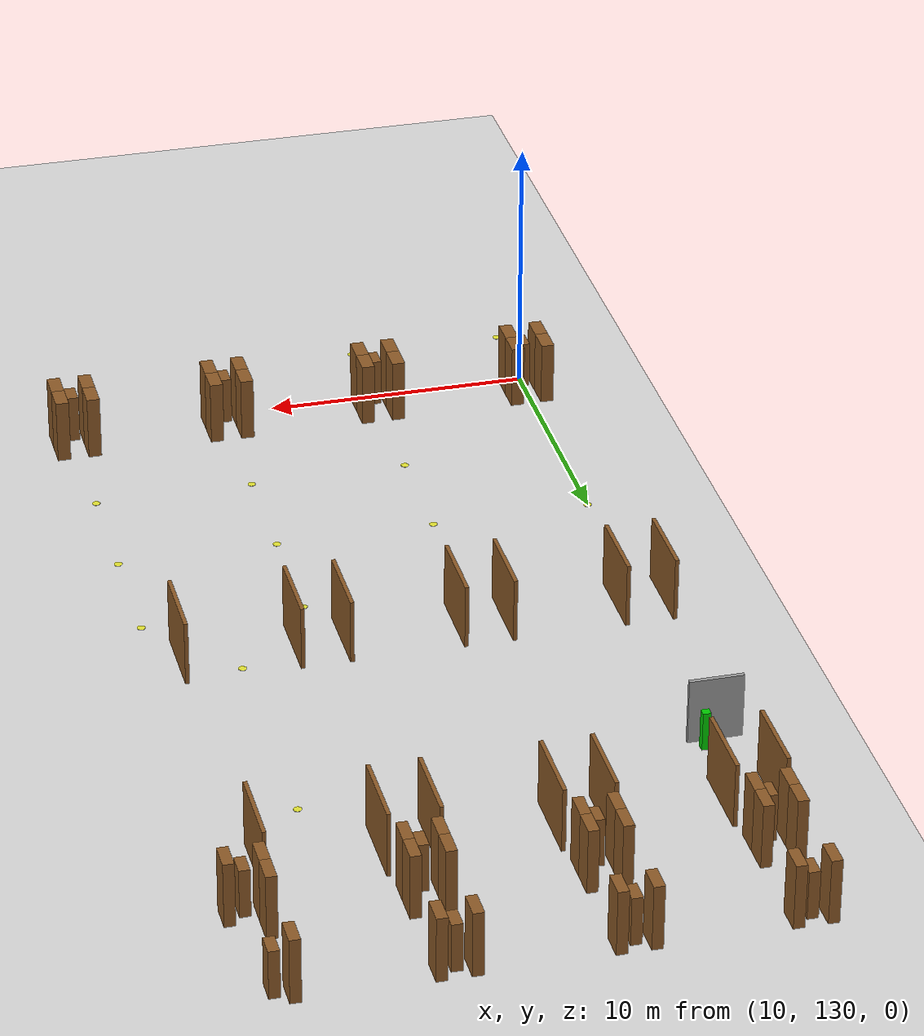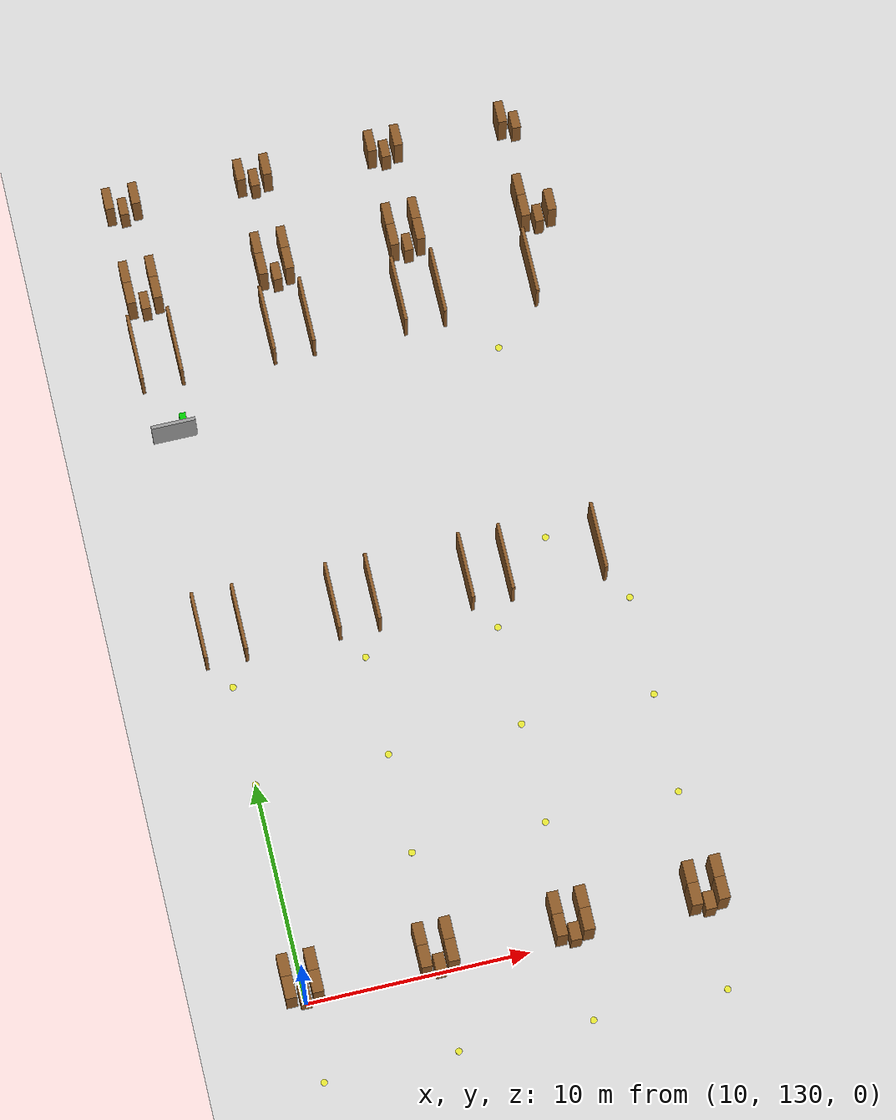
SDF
<sdf version="1.9">
 <world name="realistic_warehouse_150x200m">
  <model name="ground_plane">
   <static>true</static>
   <pose>68.5 102.0 0 0 0 0</pose>
   <link name="ground_link">
    <visual name="ground_visual">
     <geometry><box><size>127.0 194.0 0.01</size></box></geometry>
     <material><ambient>0.85 0.85 0.85 1.0</ambient><diffuse>0.85 0.85 0.85 1.0</diffuse></material>
    </visual>
    <collision name="ground_visual_collision">
     <geometry><box><size>127.0 194.0 0.01</size></box></geometry>
    </collision>
    <collision name="ground_collision">
     <geometry><plane><normal>0 0 1</normal><size>127.0 194.0</size></plane></geometry>
    </collision>
   </link>
  </model>
  <model name="dock_wall_Zone_A_C1_001">
   <static>true</static>
   <pose>10.0 156.2 1.25 0 0 0</pose>
   <link name="dock_wall_Zone_A_C1_001_link">
    <visual name="dock_wall_Zone_A_C1_001_vis">
     <geometry><box><size>2.0 0.15 2.5</size></box></geometry>
     <material><ambient>0.6 0.6 0.6 1.0</ambient><diffuse>0.6 0.6 0.6 1.0</diffuse></material>
    </visual>
    <collision name="dock_wall_Zone_A_C1_001_vis_collision">
     <geometry><box><size>2.0 0.15 2.5</size></box></geometry>
    </collision>
   </link>
  </model>
  <model name="charger_Zone_A_C1_002">
   <static>true</static>
   <pose>10.5 156.7 0.75 0 0 0</pose>
   <link name="charger_Zone_A_C1_002_link">
    <visual name="charger_Zone_A_C1_002_vis">
     <geometry><box><size>0.3 0.3 1.5</size></box></geometry>
     <material><ambient>0.0 0.8 0.0 1.0</ambient><diffuse>0.0 0.8 0.0 1.0</diffuse></material>
    </visual>
    <collision name="charger_Zone_A_C1_002_vis_collision">
     <geometry><box><size>0.3 0.3 1.5</size></box></geometry>
    </collision>
   </link>
  </model>
  <model name="cross_Zone_A_entry_005">
   <static>true</static>
   <pose>25.0 157.0 0.01 0 0 0</pose>
   <link name="cross_Zone_A_entry_005_link">
    <visual name="cross_Zone_A_entry_005_vis">
     <geometry><cylinder><radius>0.15</radius><length>0.02</length></cylinder></geometry>
     <material><ambient>0.9 0.9 0.2 1.0</ambient><diffuse>0.9 0.9 0.2 1.0</diffuse></material>
    </visual>
    <collision name="cross_Zone_A_entry_005_vis_collision">
     <geometry><cylinder><radius>0.15</radius><length>0.02</length></cylinder></geometry>
    </collision>
   </link>
  </model>
  <model name="aisle_L_Zone_A_A0_entry_006">
   <static>true</static>
   <pose>9.1 160.0 1.25 0 0 0</pose>
   <link name="aisle_L_Zone_A_A0_entry_006_link">
    <visual name="aisle_L_Zone_A_A0_entry_006_vis">
     <geometry><box><size>0.15 3.0 2.5</size></box></geometry>
     <material><ambient>0.55 0.35 0.15 1.0</ambient><diffuse>0.55 0.35 0.15 1.0</diffuse></material>
    </visual>
    <collision name="aisle_L_Zone_A_A0_entry_006_vis_collision">
     <geometry><box><size>0.15 3.0 2.5</size></box></geometry>
    </collision>
   </link>
  </model>
  <model name="aisle_R_Zone_A_A0_entry_007">
   <static>true</static>
   <pose>10.9 160.0 1.25 0 0 0</pose>
   <link name="aisle_R_Zone_A_A0_entry_007_link">
    <visual name="aisle_R_Zone_A_A0_entry_007_vis">
     <geometry><box><size>0.15 3.0 2.5</size></box></geometry>
     <material><ambient>0.55 0.35 0.15 1.0</ambient><diffuse>0.55 0.35 0.15 1.0</diffuse></material>
    </visual>
    <collision name="aisle_R_Zone_A_A0_entry_007_vis_collision">
     <geometry><box><size>0.15 3.0 2.5</size></box></geometry>
    </collision>
   </link>
  </model>
  <model name="rack_Zone_A_A0_S0_008">
   <static>true</static>
   <pose>9.4 162.5 1.25 0 0 0</pose>
   <link name="rack_Zone_A_A0_S0_008_link">
    <visual name="rack_Zone_A_A0_S0_008_vis">
     <geometry><box><size>0.4 1.0 2.5</size></box></geometry>
     <material><ambient>0.55 0.35 0.15 1.0</ambient><diffuse>0.55 0.35 0.15 1.0</diffuse></material>
    </visual>
    <collision name="rack_Zone_A_A0_S0_008_vis_collision">
     <geometry><box><size>0.4 1.0 2.5</size></box></geometry>
    </collision>
   </link>
  </model>
  <model name="rack_Zone_A_A0_S0_009">
   <static>true</static>
   <pose>9.4 163.5 1.25 0 0 0</pose>
   <link name="rack_Zone_A_A0_S0_009_link">
    <visual name="rack_Zone_A_A0_S0_009_vis">
     <geometry><box><size>0.4 1.0 2.5</size></box></geometry>
     <material><ambient>0.55 0.35 0.15 1.0</ambient><diffuse>0.55 0.35 0.15 1.0</diffuse></material>
    </visual>
    <collision name="rack_Zone_A_A0_S0_009_vis_collision">
     <geometry><box><size>0.4 1.0 2.5</size></box></geometry>
    </collision>
   </link>
  </model>
  <model name="rack_Zone_A_A0_S0_010">
   <static>true</static>
   <pose>10.6 162.5 1.25 0 0 0</pose>
   <link name="rack_Zone_A_A0_S0_010_link">
    <visual name="rack_Zone_A_A0_S0_010_vis">
     <geometry><box><size>0.4 1.0 2.5</size></box></geometry>
     <material><ambient>0.55 0.35 0.15 1.0</ambient><diffuse>0.55 0.35 0.15 1.0</diffuse></material>
    </visual>
    <collision name="rack_Zone_A_A0_S0_010_vis_collision">
     <geometry><box><size>0.4 1.0 2.5</size></box></geometry>
    </collision>
   </link>
  </model>
  <model name="rack_Zone_A_A0_S0_011">
   <static>true</static>
   <pose>10.6 163.5 1.25 0 0 0</pose>
   <link name="rack_Zone_A_A0_S0_011_link">
    <visual name="rack_Zone_A_A0_S0_011_vis">
     <geometry><box><size>0.4 1.0 2.5</size></box></geometry>
     <material><ambient>0.55 0.35 0.15 1.0</ambient><diffuse>0.55 0.35 0.15 1.0</diffuse></material>
    </visual>
    <collision name="rack_Zone_A_A0_S0_011_vis_collision">
     <geometry><box><size>0.4 1.0 2.5</size></box></geometry>
    </collision>
   </link>
  </model>
  <model name="rack_Zone_A_A0_S0_012">
   <static>true</static>
   <pose>10.0 162.2 0.9375 0 0 0</pose>
   <link name="rack_Zone_A_A0_S0_012_link">
    <visual name="rack_Zone_A_A0_S0_012_vis">
     <geometry><box><size>0.4 0.8 1.875</size></box></geometry>
     <material><ambient>0.55 0.35 0.15 1.0</ambient><diffuse>0.55 0.35 0.15 1.0</diffuse></material>
    </visual>
    <collision name="rack_Zone_A_A0_S0_012_vis_collision">
     <geometry><box><size>0.4 0.8 1.875</size></box></geometry>
    </collision>
   </link>
  </model>
  <model name="rack_Zone_A_A0_S1_013">
   <static>true</static>
   <pose>9.4 167.0 1.25 0 0 0</pose>
   <link name="rack_Zone_A_A0_S1_013_link">
    <visual name="rack_Zone_A_A0_S1_013_vis">
     <geometry><box><size>0.4 1.0 2.5</size></box></geometry>
     <material><ambient>0.55 0.35 0.15 1.0</ambient><diffuse>0.55 0.35 0.15 1.0</diffuse></material>
    </visual>
    <collision name="rack_Zone_A_A0_S1_013_vis_collision">
     <geometry><box><size>0.4 1.0 2.5</size></box></geometry>
    </collision>
   </link>
  </model>
  <model name="rack_Zone_A_A0_S1_015">
   <static>true</static>
   <pose>10.6 167.0 1.25 0 0 0</pose>
   <link name="rack_Zone_A_A0_S1_015_link">
    <visual name="rack_Zone_A_A0_S1_015_vis">
     <geometry><box><size>0.4 1.0 2.5</size></box></geometry>
     <material><ambient>0.55 0.35 0.15 1.0</ambient><diffuse>0.55 0.35 0.15 1.0</diffuse></material>
    </visual>
    <collision name="rack_Zone_A_A0_S1_015_vis_collision">
     <geometry><box><size>0.4 1.0 2.5</size></box></geometry>
    </collision>
   </link>
  </model>
  <model name="rack_Zone_A_A0_S1_017">
   <static>true</static>
   <pose>10.0 166.7 0.9375 0 0 0</pose>
   <link name="rack_Zone_A_A0_S1_017_link">
    <visual name="rack_Zone_A_A0_S1_017_vis">
     <geometry><box><size>0.4 0.8 1.875</size></box></geometry>
     <material><ambient>0.55 0.35 0.15 1.0</ambient><diffuse>0.55 0.35 0.15 1.0</diffuse></material>
    </visual>
    <collision name="rack_Zone_A_A0_S1_017_vis_collision">
     <geometry><box><size>0.4 0.8 1.875</size></box></geometry>
    </collision>
   </link>
  </model>
  <model name="aisle_L_Zone_A_A1_entry_050">
   <static>true</static>
   <pose>15.1 160.0 1.25 0 0 0</pose>
   <link name="aisle_L_Zone_A_A1_entry_050_link">
    <visual name="aisle_L_Zone_A_A1_entry_050_vis">
     <geometry><box><size>0.15 3.0 2.5</size></box></geometry>
     <material><ambient>0.55 0.35 0.15 1.0</ambient><diffuse>0.55 0.35 0.15 1.0</diffuse></material>
    </visual>
    <collision name="aisle_L_Zone_A_A1_entry_050_vis_collision">
     <geometry><box><size>0.15 3.0 2.5</size></box></geometry>
    </collision>
   </link>
  </model>
  <model name="aisle_R_Zone_A_A1_entry_051">
   <static>true</static>
   <pose>16.9 160.0 1.25 0 0 0</pose>
   <link name="aisle_R_Zone_A_A1_entry_051_link">
    <visual name="aisle_R_Zone_A_A1_entry_051_vis">
     <geometry><box><size>0.15 3.0 2.5</size></box></geometry>
     <material><ambient>0.55 0.35 0.15 1.0</ambient><diffuse>0.55 0.35 0.15 1.0</diffuse></material>
    </visual>
    <collision name="aisle_R_Zone_A_A1_entry_051_vis_collision">
     <geometry><box><size>0.15 3.0 2.5</size></box></geometry>
    </collision>
   </link>
  </model>
  <model name="rack_Zone_A_A1_S0_052">
   <static>true</static>
   <pose>15.4 162.5 1.25 0 0 0</pose>
   <link name="rack_Zone_A_A1_S0_052_link">
    <visual name="rack_Zone_A_A1_S0_052_vis">
     <geometry><box><size>0.4 1.0 2.5</size></box></geometry>
     <material><ambient>0.55 0.35 0.15 1.0</ambient><diffuse>0.55 0.35 0.15 1.0</diffuse></material>
    </visual>
    <collision name="rack_Zone_A_A1_S0_052_vis_collision">
     <geometry><box><size>0.4 1.0 2.5</size></box></geometry>
    </collision>
   </link>
  </model>
  <model name="rack_Zone_A_A1_S0_053">
   <static>true</static>
   <pose>15.4 163.5 1.25 0 0 0</pose>
   <link name="rack_Zone_A_A1_S0_053_link">
    <visual name="rack_Zone_A_A1_S0_053_vis">
     <geometry><box><size>0.4 1.0 2.5</size></box></geometry>
     <material><ambient>0.55 0.35 0.15 1.0</ambient><diffuse>0.55 0.35 0.15 1.0</diffuse></material>
    </visual>
    <collision name="rack_Zone_A_A1_S0_053_vis_collision">
     <geometry><box><size>0.4 1.0 2.5</size></box></geometry>
    </collision>
   </link>
  </model>
  <model name="rack_Zone_A_A1_S0_054">
   <static>true</static>
   <pose>16.6 162.5 1.25 0 0 0</pose>
   <link name="rack_Zone_A_A1_S0_054_link">
    <visual name="rack_Zone_A_A1_S0_054_vis">
     <geometry><box><size>0.4 1.0 2.5</size></box></geometry>
     <material><ambient>0.55 0.35 0.15 1.0</ambient><diffuse>0.55 0.35 0.15 1.0</diffuse></material>
    </visual>
    <collision name="rack_Zone_A_A1_S0_054_vis_collision">
     <geometry><box><size>0.4 1.0 2.5</size></box></geometry>
    </collision>
   </link>
  </model>
  <model name="rack_Zone_A_A1_S0_055">
   <static>true</static>
   <pose>16.6 163.5 1.25 0 0 0</pose>
   <link name="rack_Zone_A_A1_S0_055_link">
    <visual name="rack_Zone_A_A1_S0_055_vis">
     <geometry><box><size>0.4 1.0 2.5</size></box></geometry>
     <material><ambient>0.55 0.35 0.15 1.0</ambient><diffuse>0.55 0.35 0.15 1.0</diffuse></material>
    </visual>
    <collision name="rack_Zone_A_A1_S0_055_vis_collision">
     <geometry><box><size>0.4 1.0 2.5</size></box></geometry>
    </collision>
   </link>
  </model>
  <model name="rack_Zone_A_A1_S0_056">
   <static>true</static>
   <pose>16.0 162.2 0.9375 0 0 0</pose>
   <link name="rack_Zone_A_A1_S0_056_link">
    <visual name="rack_Zone_A_A1_S0_056_vis">
     <geometry><box><size>0.4 0.8 1.875</size></box></geometry>
     <material><ambient>0.55 0.35 0.15 1.0</ambient><diffuse>0.55 0.35 0.15 1.0</diffuse></material>
    </visual>
    <collision name="rack_Zone_A_A1_S0_056_vis_collision">
     <geometry><box><size>0.4 0.8 1.875</size></box></geometry>
    </collision>
   </link>
  </model>
  <model name="rack_Zone_A_A1_S1_057">
   <static>true</static>
   <pose>15.4 167.0 1.25 0 0 0</pose>
   <link name="rack_Zone_A_A1_S1_057_link">
    <visual name="rack_Zone_A_A1_S1_057_vis">
     <geometry><box><size>0.4 1.0 2.5</size></box></geometry>
     <material><ambient>0.55 0.35 0.15 1.0</ambient><diffuse>0.55 0.35 0.15 1.0</diffuse></material>
    </visual>
    <collision name="rack_Zone_A_A1_S1_057_vis_collision">
     <geometry><box><size>0.4 1.0 2.5</size></box></geometry>
    </collision>
   </link>
  </model>
  <model name="rack_Zone_A_A1_S1_059">
   <static>true</static>
   <pose>16.6 167.0 1.25 0 0 0</pose>
   <link name="rack_Zone_A_A1_S1_059_link">
    <visual name="rack_Zone_A_A1_S1_059_vis">
     <geometry><box><size>0.4 1.0 2.5</size></box></geometry>
     <material><ambient>0.55 0.35 0.15 1.0</ambient><diffuse>0.55 0.35 0.15 1.0</diffuse></material>
    </visual>
    <collision name="rack_Zone_A_A1_S1_059_vis_collision">
     <geometry><box><size>0.4 1.0 2.5</size></box></geometry>
    </collision>
   </link>
  </model>
  <model name="rack_Zone_A_A1_S1_061">
   <static>true</static>
   <pose>16.0 166.7 0.9375 0 0 0</pose>
   <link name="rack_Zone_A_A1_S1_061_link">
    <visual name="rack_Zone_A_A1_S1_061_vis">
     <geometry><box><size>0.4 0.8 1.875</size></box></geometry>
     <material><ambient>0.55 0.35 0.15 1.0</ambient><diffuse>0.55 0.35 0.15 1.0</diffuse></material>
    </visual>
    <collision name="rack_Zone_A_A1_S1_061_vis_collision">
     <geometry><box><size>0.4 0.8 1.875</size></box></geometry>
    </collision>
   </link>
  </model>
  <model name="aisle_L_Zone_A_A2_entry_094">
   <static>true</static>
   <pose>21.1 160.0 1.25 0 0 0</pose>
   <link name="aisle_L_Zone_A_A2_entry_094_link">
    <visual name="aisle_L_Zone_A_A2_entry_094_vis">
     <geometry><box><size>0.15 3.0 2.5</size></box></geometry>
     <material><ambient>0.55 0.35 0.15 1.0</ambient><diffuse>0.55 0.35 0.15 1.0</diffuse></material>
    </visual>
    <collision name="aisle_L_Zone_A_A2_entry_094_vis_collision">
     <geometry><box><size>0.15 3.0 2.5</size></box></geometry>
    </collision>
   </link>
  </model>
  <model name="aisle_R_Zone_A_A2_entry_095">
   <static>true</static>
   <pose>22.9 160.0 1.25 0 0 0</pose>
   <link name="aisle_R_Zone_A_A2_entry_095_link">
    <visual name="aisle_R_Zone_A_A2_entry_095_vis">
     <geometry><box><size>0.15 3.0 2.5</size></box></geometry>
     <material><ambient>0.55 0.35 0.15 1.0</ambient><diffuse>0.55 0.35 0.15 1.0</diffuse></material>
    </visual>
    <collision name="aisle_R_Zone_A_A2_entry_095_vis_collision">
     <geometry><box><size>0.15 3.0 2.5</size></box></geometry>
    </collision>
   </link>
  </model>
  <model name="rack_Zone_A_A2_S0_096">
   <static>true</static>
   <pose>21.4 162.5 1.25 0 0 0</pose>
   <link name="rack_Zone_A_A2_S0_096_link">
    <visual name="rack_Zone_A_A2_S0_096_vis">
     <geometry><box><size>0.4 1.0 2.5</size></box></geometry>
     <material><ambient>0.55 0.35 0.15 1.0</ambient><diffuse>0.55 0.35 0.15 1.0</diffuse></material>
    </visual>
    <collision name="rack_Zone_A_A2_S0_096_vis_collision">
     <geometry><box><size>0.4 1.0 2.5</size></box></geometry>
    </collision>
   </link>
  </model>
  <model name="rack_Zone_A_A2_S0_097">
   <static>true</static>
   <pose>21.4 163.5 1.25 0 0 0</pose>
   <link name="rack_Zone_A_A2_S0_097_link">
    <visual name="rack_Zone_A_A2_S0_097_vis">
     <geometry><box><size>0.4 1.0 2.5</size></box></geometry>
     <material><ambient>0.55 0.35 0.15 1.0</ambient><diffuse>0.55 0.35 0.15 1.0</diffuse></material>
    </visual>
    <collision name="rack_Zone_A_A2_S0_097_vis_collision">
     <geometry><box><size>0.4 1.0 2.5</size></box></geometry>
    </collision>
   </link>
  </model>
  <model name="rack_Zone_A_A2_S0_098">
   <static>true</static>
   <pose>22.6 162.5 1.25 0 0 0</pose>
   <link name="rack_Zone_A_A2_S0_098_link">
    <visual name="rack_Zone_A_A2_S0_098_vis">
     <geometry><box><size>0.4 1.0 2.5</size></box></geometry>
     <material><ambient>0.55 0.35 0.15 1.0</ambient><diffuse>0.55 0.35 0.15 1.0</diffuse></material>
    </visual>
    <collision name="rack_Zone_A_A2_S0_098_vis_collision">
     <geometry><box><size>0.4 1.0 2.5</size></box></geometry>
    </collision>
   </link>
  </model>
  <model name="rack_Zone_A_A2_S0_099">
   <static>true</static>
   <pose>22.6 163.5 1.25 0 0 0</pose>
   <link name="rack_Zone_A_A2_S0_099_link">
    <visual name="rack_Zone_A_A2_S0_099_vis">
     <geometry><box><size>0.4 1.0 2.5</size></box></geometry>
     <material><ambient>0.55 0.35 0.15 1.0</ambient><diffuse>0.55 0.35 0.15 1.0</diffuse></material>
    </visual>
    <collision name="rack_Zone_A_A2_S0_099_vis_collision">
     <geometry><box><size>0.4 1.0 2.5</size></box></geometry>
    </collision>
   </link>
  </model>
  <model name="rack_Zone_A_A2_S0_100">
   <static>true</static>
   <pose>22.0 162.2 0.9375 0 0 0</pose>
   <link name="rack_Zone_A_A2_S0_100_link">
    <visual name="rack_Zone_A_A2_S0_100_vis">
     <geometry><box><size>0.4 0.8 1.875</size></box></geometry>
     <material><ambient>0.55 0.35 0.15 1.0</ambient><diffuse>0.55 0.35 0.15 1.0</diffuse></material>
    </visual>
    <collision name="rack_Zone_A_A2_S0_100_vis_collision">
     <geometry><box><size>0.4 0.8 1.875</size></box></geometry>
    </collision>
   </link>
  </model>
  <model name="rack_Zone_A_A2_S1_101">
   <static>true</static>
   <pose>21.4 167.0 1.25 0 0 0</pose>
   <link name="rack_Zone_A_A2_S1_101_link">
    <visual name="rack_Zone_A_A2_S1_101_vis">
     <geometry><box><size>0.4 1.0 2.5</size></box></geometry>
     <material><ambient>0.55 0.35 0.15 1.0</ambient><diffuse>0.55 0.35 0.15 1.0</diffuse></material>
    </visual>
    <collision name="rack_Zone_A_A2_S1_101_vis_collision">
     <geometry><box><size>0.4 1.0 2.5</size></box></geometry>
    </collision>
   </link>
  </model>
  <model name="rack_Zone_A_A2_S1_103">
   <static>true</static>
   <pose>22.6 167.0 1.25 0 0 0</pose>
   <link name="rack_Zone_A_A2_S1_103_link">
    <visual name="rack_Zone_A_A2_S1_103_vis">
     <geometry><box><size>0.4 1.0 2.5</size></box></geometry>
     <material><ambient>0.55 0.35 0.15 1.0</ambient><diffuse>0.55 0.35 0.15 1.0</diffuse></material>
    </visual>
    <collision name="rack_Zone_A_A2_S1_103_vis_collision">
     <geometry><box><size>0.4 1.0 2.5</size></box></geometry>
    </collision>
   </link>
  </model>
  <model name="rack_Zone_A_A2_S1_105">
   <static>true</static>
   <pose>22.0 166.7 0.9375 0 0 0</pose>
   <link name="rack_Zone_A_A2_S1_105_link">
    <visual name="rack_Zone_A_A2_S1_105_vis">
     <geometry><box><size>0.4 0.8 1.875</size></box></geometry>
     <material><ambient>0.55 0.35 0.15 1.0</ambient><diffuse>0.55 0.35 0.15 1.0</diffuse></material>
    </visual>
    <collision name="rack_Zone_A_A2_S1_105_vis_collision">
     <geometry><box><size>0.4 0.8 1.875</size></box></geometry>
    </collision>
   </link>
  </model>
  <model name="aisle_L_Zone_A_A3_entry_138">
   <static>true</static>
   <pose>27.1 160.0 1.25 0 0 0</pose>
   <link name="aisle_L_Zone_A_A3_entry_138_link">
    <visual name="aisle_L_Zone_A_A3_entry_138_vis">
     <geometry><box><size>0.15 3.0 2.5</size></box></geometry>
     <material><ambient>0.55 0.35 0.15 1.0</ambient><diffuse>0.55 0.35 0.15 1.0</diffuse></material>
    </visual>
    <collision name="aisle_L_Zone_A_A3_entry_138_vis_collision">
     <geometry><box><size>0.15 3.0 2.5</size></box></geometry>
    </collision>
   </link>
  </model>
  <model name="rack_Zone_A_A3_S0_140">
   <static>true</static>
   <pose>27.4 162.5 1.25 0 0 0</pose>
   <link name="rack_Zone_A_A3_S0_140_link">
    <visual name="rack_Zone_A_A3_S0_140_vis">
     <geometry><box><size>0.4 1.0 2.5</size></box></geometry>
     <material><ambient>0.55 0.35 0.15 1.0</ambient><diffuse>0.55 0.35 0.15 1.0</diffuse></material>
    </visual>
    <collision name="rack_Zone_A_A3_S0_140_vis_collision">
     <geometry><box><size>0.4 1.0 2.5</size></box></geometry>
    </collision>
   </link>
  </model>
  <model name="rack_Zone_A_A3_S0_141">
   <static>true</static>
   <pose>27.4 163.5 1.25 0 0 0</pose>
   <link name="rack_Zone_A_A3_S0_141_link">
    <visual name="rack_Zone_A_A3_S0_141_vis">
     <geometry><box><size>0.4 1.0 2.5</size></box></geometry>
     <material><ambient>0.55 0.35 0.15 1.0</ambient><diffuse>0.55 0.35 0.15 1.0</diffuse></material>
    </visual>
    <collision name="rack_Zone_A_A3_S0_141_vis_collision">
     <geometry><box><size>0.4 1.0 2.5</size></box></geometry>
    </collision>
   </link>
  </model>
  <model name="rack_Zone_A_A3_S0_142">
   <static>true</static>
   <pose>28.6 162.5 1.25 0 0 0</pose>
   <link name="rack_Zone_A_A3_S0_142_link">
    <visual name="rack_Zone_A_A3_S0_142_vis">
     <geometry><box><size>0.4 1.0 2.5</size></box></geometry>
     <material><ambient>0.55 0.35 0.15 1.0</ambient><diffuse>0.55 0.35 0.15 1.0</diffuse></material>
    </visual>
    <collision name="rack_Zone_A_A3_S0_142_vis_collision">
     <geometry><box><size>0.4 1.0 2.5</size></box></geometry>
    </collision>
   </link>
  </model>
  <model name="rack_Zone_A_A3_S0_144">
   <static>true</static>
   <pose>28.0 162.2 0.9375 0 0 0</pose>
   <link name="rack_Zone_A_A3_S0_144_link">
    <visual name="rack_Zone_A_A3_S0_144_vis">
     <geometry><box><size>0.4 0.8 1.875</size></box></geometry>
     <material><ambient>0.55 0.35 0.15 1.0</ambient><diffuse>0.55 0.35 0.15 1.0</diffuse></material>
    </visual>
    <collision name="rack_Zone_A_A3_S0_144_vis_collision">
     <geometry><box><size>0.4 0.8 1.875</size></box></geometry>
    </collision>
   </link>
  </model>
  <model name="rack_Zone_A_A3_S1_145">
   <static>true</static>
   <pose>27.4 167.0 1.25 0 0 0</pose>
   <link name="rack_Zone_A_A3_S1_145_link">
    <visual name="rack_Zone_A_A3_S1_145_vis">
     <geometry><box><size>0.4 1.0 2.5</size></box></geometry>
     <material><ambient>0.55 0.35 0.15 1.0</ambient><diffuse>0.55 0.35 0.15 1.0</diffuse></material>
    </visual>
    <collision name="rack_Zone_A_A3_S1_145_vis_collision">
     <geometry><box><size>0.4 1.0 2.5</size></box></geometry>
    </collision>
   </link>
  </model>
  <model name="rack_Zone_A_A3_S1_149">
   <static>true</static>
   <pose>28.0 166.7 0.9375 0 0 0</pose>
   <link name="rack_Zone_A_A3_S1_149_link">
    <visual name="rack_Zone_A_A3_S1_149_vis">
     <geometry><box><size>0.4 0.8 1.875</size></box></geometry>
     <material><ambient>0.55 0.35 0.15 1.0</ambient><diffuse>0.55 0.35 0.15 1.0</diffuse></material>
    </visual>
    <collision name="rack_Zone_A_A3_S1_149_vis_collision">
     <geometry><box><size>0.4 0.8 1.875</size></box></geometry>
    </collision>
   </link>
  </model>
  <model name="cross_Zone_D_A0_S3_690">
   <static>true</static>
   <pose>10.0 126.5 0.01 0 0 0</pose>
   <link name="cross_Zone_D_A0_S3_690_link">
    <visual name="cross_Zone_D_A0_S3_690_vis">
     <geometry><cylinder><radius>0.15</radius><length>0.02</length></cylinder></geometry>
     <material><ambient>0.9 0.9 0.2 1.0</ambient><diffuse>0.9 0.9 0.2 1.0</diffuse></material>
    </visual>
    <collision name="cross_Zone_D_A0_S3_690_vis_collision">
     <geometry><cylinder><radius>0.15</radius><length>0.02</length></cylinder></geometry>
    </collision>
   </link>
  </model>
  <model name="rack_Zone_D_A0_S4_691">
   <static>true</static>
   <pose>9.4 130.5 1.25 0 0 0</pose>
   <link name="rack_Zone_D_A0_S4_691_link">
    <visual name="rack_Zone_D_A0_S4_691_vis">
     <geometry><box><size>0.5 1.0 2.5</size></box></geometry>
     <material><ambient>0.55 0.35 0.15 1.0</ambient><diffuse>0.55 0.35 0.15 1.0</diffuse></material>
    </visual>
    <collision name="rack_Zone_D_A0_S4_691_vis_collision">
     <geometry><box><size>0.5 1.0 2.5</size></box></geometry>
    </collision>
   </link>
  </model>
  <model name="rack_Zone_D_A0_S4_692">
   <static>true</static>
   <pose>9.4 131.5 1.25 0 0 0</pose>
   <link name="rack_Zone_D_A0_S4_692_link">
    <visual name="rack_Zone_D_A0_S4_692_vis">
     <geometry><box><size>0.5 1.0 2.5</size></box></geometry>
     <material><ambient>0.55 0.35 0.15 1.0</ambient><diffuse>0.55 0.35 0.15 1.0</diffuse></material>
    </visual>
    <collision name="rack_Zone_D_A0_S4_692_vis_collision">
     <geometry><box><size>0.5 1.0 2.5</size></box></geometry>
    </collision>
   </link>
  </model>
  <model name="rack_Zone_D_A0_S4_693">
   <static>true</static>
   <pose>10.6 130.5 1.25 0 0 0</pose>
   <link name="rack_Zone_D_A0_S4_693_link">
    <visual name="rack_Zone_D_A0_S4_693_vis">
     <geometry><box><size>0.5 1.0 2.5</size></box></geometry>
     <material><ambient>0.55 0.35 0.15 1.0</ambient><diffuse>0.55 0.35 0.15 1.0</diffuse></material>
    </visual>
    <collision name="rack_Zone_D_A0_S4_693_vis_collision">
     <geometry><box><size>0.5 1.0 2.5</size></box></geometry>
    </collision>
   </link>
  </model>
  <model name="rack_Zone_D_A0_S4_694">
   <static>true</static>
   <pose>10.6 131.5 1.25 0 0 0</pose>
   <link name="rack_Zone_D_A0_S4_694_link">
    <visual name="rack_Zone_D_A0_S4_694_vis">
     <geometry><box><size>0.5 1.0 2.5</size></box></geometry>
     <material><ambient>0.55 0.35 0.15 1.0</ambient><diffuse>0.55 0.35 0.15 1.0</diffuse></material>
    </visual>
    <collision name="rack_Zone_D_A0_S4_694_vis_collision">
     <geometry><box><size>0.5 1.0 2.5</size></box></geometry>
    </collision>
   </link>
  </model>
  <model name="rack_Zone_D_A0_S4_695">
   <static>true</static>
   <pose>10.0 130.2 0.9375 0 0 0</pose>
   <link name="rack_Zone_D_A0_S4_695_link">
    <visual name="rack_Zone_D_A0_S4_695_vis">
     <geometry><box><size>0.5 0.8 1.875</size></box></geometry>
     <material><ambient>0.55 0.35 0.15 1.0</ambient><diffuse>0.55 0.35 0.15 1.0</diffuse></material>
    </visual>
    <collision name="rack_Zone_D_A0_S4_695_vis_collision">
     <geometry><box><size>0.5 0.8 1.875</size></box></geometry>
    </collision>
   </link>
  </model>
  <model name="cross_Zone_D_A0_S5_696">
   <static>true</static>
   <pose>10.0 135.5 0.01 0 0 0</pose>
   <link name="cross_Zone_D_A0_S5_696_link">
    <visual name="cross_Zone_D_A0_S5_696_vis">
     <geometry><cylinder><radius>0.15</radius><length>0.02</length></cylinder></geometry>
     <material><ambient>0.9 0.9 0.2 1.0</ambient><diffuse>0.9 0.9 0.2 1.0</diffuse></material>
    </visual>
    <collision name="cross_Zone_D_A0_S5_696_vis_collision">
     <geometry><cylinder><radius>0.15</radius><length>0.02</length></cylinder></geometry>
    </collision>
   </link>
  </model>
  <model name="gap_Zone_D_A0_S6_697">
   <static>true</static>
   <pose>10.0 140.0 0.01 0 0 0</pose>
   <link name="gap_Zone_D_A0_S6_697_link">
    <visual name="gap_Zone_D_A0_S6_697_vis">
     <geometry><cylinder><radius>0.15</radius><length>0.02</length></cylinder></geometry>
     <material><ambient>0.9 0.9 0.2 1.0</ambient><diffuse>0.9 0.9 0.2 1.0</diffuse></material>
    </visual>
    <collision name="gap_Zone_D_A0_S6_697_vis_collision">
     <geometry><cylinder><radius>0.15</radius><length>0.02</length></cylinder></geometry>
    </collision>
   </link>
  </model>
  <model name="cross_Zone_D_A0_S7_698">
   <static>true</static>
   <pose>10.0 144.5 0.01 0 0 0</pose>
   <link name="cross_Zone_D_A0_S7_698_link">
    <visual name="cross_Zone_D_A0_S7_698_vis">
     <geometry><cylinder><radius>0.15</radius><length>0.02</length></cylinder></geometry>
     <material><ambient>0.9 0.9 0.2 1.0</ambient><diffuse>0.9 0.9 0.2 1.0</diffuse></material>
    </visual>
    <collision name="cross_Zone_D_A0_S7_698_vis_collision">
     <geometry><cylinder><radius>0.15</radius><length>0.02</length></cylinder></geometry>
    </collision>
   </link>
  </model>
  <model name="aisle_L_Zone_D_A0_exit_699">
   <static>true</static>
   <pose>9.1 147.0 1.25 0 0 0</pose>
   <link name="aisle_L_Zone_D_A0_exit_699_link">
    <visual name="aisle_L_Zone_D_A0_exit_699_vis">
     <geometry><box><size>0.15 3.0 2.5</size></box></geometry>
     <material><ambient>0.55 0.35 0.15 1.0</ambient><diffuse>0.55 0.35 0.15 1.0</diffuse></material>
    </visual>
    <collision name="aisle_L_Zone_D_A0_exit_699_vis_collision">
     <geometry><box><size>0.15 3.0 2.5</size></box></geometry>
    </collision>
   </link>
  </model>
  <model name="aisle_R_Zone_D_A0_exit_700">
   <static>true</static>
   <pose>10.9 147.0 1.25 0 0 0</pose>
   <link name="aisle_R_Zone_D_A0_exit_700_link">
    <visual name="aisle_R_Zone_D_A0_exit_700_vis">
     <geometry><box><size>0.15 3.0 2.5</size></box></geometry>
     <material><ambient>0.55 0.35 0.15 1.0</ambient><diffuse>0.55 0.35 0.15 1.0</diffuse></material>
    </visual>
    <collision name="aisle_R_Zone_D_A0_exit_700_vis_collision">
     <geometry><box><size>0.15 3.0 2.5</size></box></geometry>
    </collision>
   </link>
  </model>
  <model name="cross_Zone_D_A1_S3_710">
   <static>true</static>
   <pose>16.0 126.5 0.01 0 0 0</pose>
   <link name="cross_Zone_D_A1_S3_710_link">
    <visual name="cross_Zone_D_A1_S3_710_vis">
     <geometry><cylinder><radius>0.15</radius><length>0.02</length></cylinder></geometry>
     <material><ambient>0.9 0.9 0.2 1.0</ambient><diffuse>0.9 0.9 0.2 1.0</diffuse></material>
    </visual>
    <collision name="cross_Zone_D_A1_S3_710_vis_collision">
     <geometry><cylinder><radius>0.15</radius><length>0.02</length></cylinder></geometry>
    </collision>
   </link>
  </model>
  <model name="rack_Zone_D_A1_S4_711">
   <static>true</static>
   <pose>15.4 130.5 1.25 0 0 0</pose>
   <link name="rack_Zone_D_A1_S4_711_link">
    <visual name="rack_Zone_D_A1_S4_711_vis">
     <geometry><box><size>0.5 1.0 2.5</size></box></geometry>
     <material><ambient>0.55 0.35 0.15 1.0</ambient><diffuse>0.55 0.35 0.15 1.0</diffuse></material>
    </visual>
    <collision name="rack_Zone_D_A1_S4_711_vis_collision">
     <geometry><box><size>0.5 1.0 2.5</size></box></geometry>
    </collision>
   </link>
  </model>
  <model name="rack_Zone_D_A1_S4_712">
   <static>true</static>
   <pose>15.4 131.5 1.25 0 0 0</pose>
   <link name="rack_Zone_D_A1_S4_712_link">
    <visual name="rack_Zone_D_A1_S4_712_vis">
     <geometry><box><size>0.5 1.0 2.5</size></box></geometry>
     <material><ambient>0.55 0.35 0.15 1.0</ambient><diffuse>0.55 0.35 0.15 1.0</diffuse></material>
    </visual>
    <collision name="rack_Zone_D_A1_S4_712_vis_collision">
     <geometry><box><size>0.5 1.0 2.5</size></box></geometry>
    </collision>
   </link>
  </model>
  <model name="rack_Zone_D_A1_S4_713">
   <static>true</static>
   <pose>16.6 130.5 1.25 0 0 0</pose>
   <link name="rack_Zone_D_A1_S4_713_link">
    <visual name="rack_Zone_D_A1_S4_713_vis">
     <geometry><box><size>0.5 1.0 2.5</size></box></geometry>
     <material><ambient>0.55 0.35 0.15 1.0</ambient><diffuse>0.55 0.35 0.15 1.0</diffuse></material>
    </visual>
    <collision name="rack_Zone_D_A1_S4_713_vis_collision">
     <geometry><box><size>0.5 1.0 2.5</size></box></geometry>
    </collision>
   </link>
  </model>
  <model name="rack_Zone_D_A1_S4_714">
   <static>true</static>
   <pose>16.6 131.5 1.25 0 0 0</pose>
   <link name="rack_Zone_D_A1_S4_714_link">
    <visual name="rack_Zone_D_A1_S4_714_vis">
     <geometry><box><size>0.5 1.0 2.5</size></box></geometry>
     <material><ambient>0.55 0.35 0.15 1.0</ambient><diffuse>0.55 0.35 0.15 1.0</diffuse></material>
    </visual>
    <collision name="rack_Zone_D_A1_S4_714_vis_collision">
     <geometry><box><size>0.5 1.0 2.5</size></box></geometry>
    </collision>
   </link>
  </model>
  <model name="rack_Zone_D_A1_S4_715">
   <static>true</static>
   <pose>16.0 130.2 0.9375 0 0 0</pose>
   <link name="rack_Zone_D_A1_S4_715_link">
    <visual name="rack_Zone_D_A1_S4_715_vis">
     <geometry><box><size>0.5 0.8 1.875</size></box></geometry>
     <material><ambient>0.55 0.35 0.15 1.0</ambient><diffuse>0.55 0.35 0.15 1.0</diffuse></material>
    </visual>
    <collision name="rack_Zone_D_A1_S4_715_vis_collision">
     <geometry><box><size>0.5 0.8 1.875</size></box></geometry>
    </collision>
   </link>
  </model>
  <model name="cross_Zone_D_A1_S5_716">
   <static>true</static>
   <pose>16.0 135.5 0.01 0 0 0</pose>
   <link name="cross_Zone_D_A1_S5_716_link">
    <visual name="cross_Zone_D_A1_S5_716_vis">
     <geometry><cylinder><radius>0.15</radius><length>0.02</length></cylinder></geometry>
     <material><ambient>0.9 0.9 0.2 1.0</ambient><diffuse>0.9 0.9 0.2 1.0</diffuse></material>
    </visual>
    <collision name="cross_Zone_D_A1_S5_716_vis_collision">
     <geometry><cylinder><radius>0.15</radius><length>0.02</length></cylinder></geometry>
    </collision>
   </link>
  </model>
  <model name="gap_Zone_D_A1_S6_717">
   <static>true</static>
   <pose>16.0 140.0 0.01 0 0 0</pose>
   <link name="gap_Zone_D_A1_S6_717_link">
    <visual name="gap_Zone_D_A1_S6_717_vis">
     <geometry><cylinder><radius>0.15</radius><length>0.02</length></cylinder></geometry>
     <material><ambient>0.9 0.9 0.2 1.0</ambient><diffuse>0.9 0.9 0.2 1.0</diffuse></material>
    </visual>
    <collision name="gap_Zone_D_A1_S6_717_vis_collision">
     <geometry><cylinder><radius>0.15</radius><length>0.02</length></cylinder></geometry>
    </collision>
   </link>
  </model>
  <model name="cross_Zone_D_A1_S7_718">
   <static>true</static>
   <pose>16.0 144.5 0.01 0 0 0</pose>
   <link name="cross_Zone_D_A1_S7_718_link">
    <visual name="cross_Zone_D_A1_S7_718_vis">
     <geometry><cylinder><radius>0.15</radius><length>0.02</length></cylinder></geometry>
     <material><ambient>0.9 0.9 0.2 1.0</ambient><diffuse>0.9 0.9 0.2 1.0</diffuse></material>
    </visual>
    <collision name="cross_Zone_D_A1_S7_718_vis_collision">
     <geometry><cylinder><radius>0.15</radius><length>0.02</length></cylinder></geometry>
    </collision>
   </link>
  </model>
  <model name="aisle_L_Zone_D_A1_exit_719">
   <static>true</static>
   <pose>15.1 147.0 1.25 0 0 0</pose>
   <link name="aisle_L_Zone_D_A1_exit_719_link">
    <visual name="aisle_L_Zone_D_A1_exit_719_vis">
     <geometry><box><size>0.15 3.0 2.5</size></box></geometry>
     <material><ambient>0.55 0.35 0.15 1.0</ambient><diffuse>0.55 0.35 0.15 1.0</diffuse></material>
    </visual>
    <collision name="aisle_L_Zone_D_A1_exit_719_vis_collision">
     <geometry><box><size>0.15 3.0 2.5</size></box></geometry>
    </collision>
   </link>
  </model>
  <model name="aisle_R_Zone_D_A1_exit_720">
   <static>true</static>
   <pose>16.9 147.0 1.25 0 0 0</pose>
   <link name="aisle_R_Zone_D_A1_exit_720_link">
    <visual name="aisle_R_Zone_D_A1_exit_720_vis">
     <geometry><box><size>0.15 3.0 2.5</size></box></geometry>
     <material><ambient>0.55 0.35 0.15 1.0</ambient><diffuse>0.55 0.35 0.15 1.0</diffuse></material>
    </visual>
    <collision name="aisle_R_Zone_D_A1_exit_720_vis_collision">
     <geometry><box><size>0.15 3.0 2.5</size></box></geometry>
    </collision>
   </link>
  </model>
  <model name="cross_Zone_D_A2_S3_730">
   <static>true</static>
   <pose>22.0 126.5 0.01 0 0 0</pose>
   <link name="cross_Zone_D_A2_S3_730_link">
    <visual name="cross_Zone_D_A2_S3_730_vis">
     <geometry><cylinder><radius>0.15</radius><length>0.02</length></cylinder></geometry>
     <material><ambient>0.9 0.9 0.2 1.0</ambient><diffuse>0.9 0.9 0.2 1.0</diffuse></material>
    </visual>
    <collision name="cross_Zone_D_A2_S3_730_vis_collision">
     <geometry><cylinder><radius>0.15</radius><length>0.02</length></cylinder></geometry>
    </collision>
   </link>
  </model>
  <model name="rack_Zone_D_A2_S4_731">
   <static>true</static>
   <pose>21.4 130.5 1.25 0 0 0</pose>
   <link name="rack_Zone_D_A2_S4_731_link">
    <visual name="rack_Zone_D_A2_S4_731_vis">
     <geometry><box><size>0.5 1.0 2.5</size></box></geometry>
     <material><ambient>0.55 0.35 0.15 1.0</ambient><diffuse>0.55 0.35 0.15 1.0</diffuse></material>
    </visual>
    <collision name="rack_Zone_D_A2_S4_731_vis_collision">
     <geometry><box><size>0.5 1.0 2.5</size></box></geometry>
    </collision>
   </link>
  </model>
  <model name="rack_Zone_D_A2_S4_732">
   <static>true</static>
   <pose>21.4 131.5 1.25 0 0 0</pose>
   <link name="rack_Zone_D_A2_S4_732_link">
    <visual name="rack_Zone_D_A2_S4_732_vis">
     <geometry><box><size>0.5 1.0 2.5</size></box></geometry>
     <material><ambient>0.55 0.35 0.15 1.0</ambient><diffuse>0.55 0.35 0.15 1.0</diffuse></material>
    </visual>
    <collision name="rack_Zone_D_A2_S4_732_vis_collision">
     <geometry><box><size>0.5 1.0 2.5</size></box></geometry>
    </collision>
   </link>
  </model>
  <model name="rack_Zone_D_A2_S4_733">
   <static>true</static>
   <pose>22.6 130.5 1.25 0 0 0</pose>
   <link name="rack_Zone_D_A2_S4_733_link">
    <visual name="rack_Zone_D_A2_S4_733_vis">
     <geometry><box><size>0.5 1.0 2.5</size></box></geometry>
     <material><ambient>0.55 0.35 0.15 1.0</ambient><diffuse>0.55 0.35 0.15 1.0</diffuse></material>
    </visual>
    <collision name="rack_Zone_D_A2_S4_733_vis_collision">
     <geometry><box><size>0.5 1.0 2.5</size></box></geometry>
    </collision>
   </link>
  </model>
  <model name="rack_Zone_D_A2_S4_734">
   <static>true</static>
   <pose>22.6 131.5 1.25 0 0 0</pose>
   <link name="rack_Zone_D_A2_S4_734_link">
    <visual name="rack_Zone_D_A2_S4_734_vis">
     <geometry><box><size>0.5 1.0 2.5</size></box></geometry>
     <material><ambient>0.55 0.35 0.15 1.0</ambient><diffuse>0.55 0.35 0.15 1.0</diffuse></material>
    </visual>
    <collision name="rack_Zone_D_A2_S4_734_vis_collision">
     <geometry><box><size>0.5 1.0 2.5</size></box></geometry>
    </collision>
   </link>
  </model>
  <model name="rack_Zone_D_A2_S4_735">
   <static>true</static>
   <pose>22.0 130.2 0.9375 0 0 0</pose>
   <link name="rack_Zone_D_A2_S4_735_link">
    <visual name="rack_Zone_D_A2_S4_735_vis">
     <geometry><box><size>0.5 0.8 1.875</size></box></geometry>
     <material><ambient>0.55 0.35 0.15 1.0</ambient><diffuse>0.55 0.35 0.15 1.0</diffuse></material>
    </visual>
    <collision name="rack_Zone_D_A2_S4_735_vis_collision">
     <geometry><box><size>0.5 0.8 1.875</size></box></geometry>
    </collision>
   </link>
  </model>
  <model name="cross_Zone_D_A2_S5_736">
   <static>true</static>
   <pose>22.0 135.5 0.01 0 0 0</pose>
   <link name="cross_Zone_D_A2_S5_736_link">
    <visual name="cross_Zone_D_A2_S5_736_vis">
     <geometry><cylinder><radius>0.15</radius><length>0.02</length></cylinder></geometry>
     <material><ambient>0.9 0.9 0.2 1.0</ambient><diffuse>0.9 0.9 0.2 1.0</diffuse></material>
    </visual>
    <collision name="cross_Zone_D_A2_S5_736_vis_collision">
     <geometry><cylinder><radius>0.15</radius><length>0.02</length></cylinder></geometry>
    </collision>
   </link>
  </model>
  <model name="gap_Zone_D_A2_S6_737">
   <static>true</static>
   <pose>22.0 140.0 0.01 0 0 0</pose>
   <link name="gap_Zone_D_A2_S6_737_link">
    <visual name="gap_Zone_D_A2_S6_737_vis">
     <geometry><cylinder><radius>0.15</radius><length>0.02</length></cylinder></geometry>
     <material><ambient>0.9 0.9 0.2 1.0</ambient><diffuse>0.9 0.9 0.2 1.0</diffuse></material>
    </visual>
    <collision name="gap_Zone_D_A2_S6_737_vis_collision">
     <geometry><cylinder><radius>0.15</radius><length>0.02</length></cylinder></geometry>
    </collision>
   </link>
  </model>
  <model name="cross_Zone_D_A2_S7_738">
   <static>true</static>
   <pose>22.0 144.5 0.01 0 0 0</pose>
   <link name="cross_Zone_D_A2_S7_738_link">
    <visual name="cross_Zone_D_A2_S7_738_vis">
     <geometry><cylinder><radius>0.15</radius><length>0.02</length></cylinder></geometry>
     <material><ambient>0.9 0.9 0.2 1.0</ambient><diffuse>0.9 0.9 0.2 1.0</diffuse></material>
    </visual>
    <collision name="cross_Zone_D_A2_S7_738_vis_collision">
     <geometry><cylinder><radius>0.15</radius><length>0.02</length></cylinder></geometry>
    </collision>
   </link>
  </model>
  <model name="aisle_L_Zone_D_A2_exit_739">
   <static>true</static>
   <pose>21.1 147.0 1.25 0 0 0</pose>
   <link name="aisle_L_Zone_D_A2_exit_739_link">
    <visual name="aisle_L_Zone_D_A2_exit_739_vis">
     <geometry><box><size>0.15 3.0 2.5</size></box></geometry>
     <material><ambient>0.55 0.35 0.15 1.0</ambient><diffuse>0.55 0.35 0.15 1.0</diffuse></material>
    </visual>
    <collision name="aisle_L_Zone_D_A2_exit_739_vis_collision">
     <geometry><box><size>0.15 3.0 2.5</size></box></geometry>
    </collision>
   </link>
  </model>
  <model name="aisle_R_Zone_D_A2_exit_740">
   <static>true</static>
   <pose>22.9 147.0 1.25 0 0 0</pose>
   <link name="aisle_R_Zone_D_A2_exit_740_link">
    <visual name="aisle_R_Zone_D_A2_exit_740_vis">
     <geometry><box><size>0.15 3.0 2.5</size></box></geometry>
     <material><ambient>0.55 0.35 0.15 1.0</ambient><diffuse>0.55 0.35 0.15 1.0</diffuse></material>
    </visual>
    <collision name="aisle_R_Zone_D_A2_exit_740_vis_collision">
     <geometry><box><size>0.15 3.0 2.5</size></box></geometry>
    </collision>
   </link>
  </model>
  <model name="cross_Zone_D_A3_S3_750">
   <static>true</static>
   <pose>28.0 126.5 0.01 0 0 0</pose>
   <link name="cross_Zone_D_A3_S3_750_link">
    <visual name="cross_Zone_D_A3_S3_750_vis">
     <geometry><cylinder><radius>0.15</radius><length>0.02</length></cylinder></geometry>
     <material><ambient>0.9 0.9 0.2 1.0</ambient><diffuse>0.9 0.9 0.2 1.0</diffuse></material>
    </visual>
    <collision name="cross_Zone_D_A3_S3_750_vis_collision">
     <geometry><cylinder><radius>0.15</radius><length>0.02</length></cylinder></geometry>
    </collision>
   </link>
  </model>
  <model name="rack_Zone_D_A3_S4_751">
   <static>true</static>
   <pose>27.4 130.5 1.25 0 0 0</pose>
   <link name="rack_Zone_D_A3_S4_751_link">
    <visual name="rack_Zone_D_A3_S4_751_vis">
     <geometry><box><size>0.5 1.0 2.5</size></box></geometry>
     <material><ambient>0.55 0.35 0.15 1.0</ambient><diffuse>0.55 0.35 0.15 1.0</diffuse></material>
    </visual>
    <collision name="rack_Zone_D_A3_S4_751_vis_collision">
     <geometry><box><size>0.5 1.0 2.5</size></box></geometry>
    </collision>
   </link>
  </model>
  <model name="rack_Zone_D_A3_S4_752">
   <static>true</static>
   <pose>27.4 131.5 1.25 0 0 0</pose>
   <link name="rack_Zone_D_A3_S4_752_link">
    <visual name="rack_Zone_D_A3_S4_752_vis">
     <geometry><box><size>0.5 1.0 2.5</size></box></geometry>
     <material><ambient>0.55 0.35 0.15 1.0</ambient><diffuse>0.55 0.35 0.15 1.0</diffuse></material>
    </visual>
    <collision name="rack_Zone_D_A3_S4_752_vis_collision">
     <geometry><box><size>0.5 1.0 2.5</size></box></geometry>
    </collision>
   </link>
  </model>
  <model name="rack_Zone_D_A3_S4_753">
   <static>true</static>
   <pose>28.6 130.5 1.25 0 0 0</pose>
   <link name="rack_Zone_D_A3_S4_753_link">
    <visual name="rack_Zone_D_A3_S4_753_vis">
     <geometry><box><size>0.5 1.0 2.5</size></box></geometry>
     <material><ambient>0.55 0.35 0.15 1.0</ambient><diffuse>0.55 0.35 0.15 1.0</diffuse></material>
    </visual>
    <collision name="rack_Zone_D_A3_S4_753_vis_collision">
     <geometry><box><size>0.5 1.0 2.5</size></box></geometry>
    </collision>
   </link>
  </model>
  <model name="rack_Zone_D_A3_S4_754">
   <static>true</static>
   <pose>28.6 131.5 1.25 0 0 0</pose>
   <link name="rack_Zone_D_A3_S4_754_link">
    <visual name="rack_Zone_D_A3_S4_754_vis">
     <geometry><box><size>0.5 1.0 2.5</size></box></geometry>
     <material><ambient>0.55 0.35 0.15 1.0</ambient><diffuse>0.55 0.35 0.15 1.0</diffuse></material>
    </visual>
    <collision name="rack_Zone_D_A3_S4_754_vis_collision">
     <geometry><box><size>0.5 1.0 2.5</size></box></geometry>
    </collision>
   </link>
  </model>
  <model name="rack_Zone_D_A3_S4_755">
   <static>true</static>
   <pose>28.0 130.2 0.9375 0 0 0</pose>
   <link name="rack_Zone_D_A3_S4_755_link">
    <visual name="rack_Zone_D_A3_S4_755_vis">
     <geometry><box><size>0.5 0.8 1.875</size></box></geometry>
     <material><ambient>0.55 0.35 0.15 1.0</ambient><diffuse>0.55 0.35 0.15 1.0</diffuse></material>
    </visual>
    <collision name="rack_Zone_D_A3_S4_755_vis_collision">
     <geometry><box><size>0.5 0.8 1.875</size></box></geometry>
    </collision>
   </link>
  </model>
  <model name="cross_Zone_D_A3_S5_756">
   <static>true</static>
   <pose>28.0 135.5 0.01 0 0 0</pose>
   <link name="cross_Zone_D_A3_S5_756_link">
    <visual name="cross_Zone_D_A3_S5_756_vis">
     <geometry><cylinder><radius>0.15</radius><length>0.02</length></cylinder></geometry>
     <material><ambient>0.9 0.9 0.2 1.0</ambient><diffuse>0.9 0.9 0.2 1.0</diffuse></material>
    </visual>
    <collision name="cross_Zone_D_A3_S5_756_vis_collision">
     <geometry><cylinder><radius>0.15</radius><length>0.02</length></cylinder></geometry>
    </collision>
   </link>
  </model>
  <model name="gap_Zone_D_A3_S6_757">
   <static>true</static>
   <pose>28.0 140.0 0.01 0 0 0</pose>
   <link name="gap_Zone_D_A3_S6_757_link">
    <visual name="gap_Zone_D_A3_S6_757_vis">
     <geometry><cylinder><radius>0.15</radius><length>0.02</length></cylinder></geometry>
     <material><ambient>0.9 0.9 0.2 1.0</ambient><diffuse>0.9 0.9 0.2 1.0</diffuse></material>
    </visual>
    <collision name="gap_Zone_D_A3_S6_757_vis_collision">
     <geometry><cylinder><radius>0.15</radius><length>0.02</length></cylinder></geometry>
    </collision>
   </link>
  </model>
  <model name="cross_Zone_D_A3_S7_758">
   <static>true</static>
   <pose>28.0 144.5 0.01 0 0 0</pose>
   <link name="cross_Zone_D_A3_S7_758_link">
    <visual name="cross_Zone_D_A3_S7_758_vis">
     <geometry><cylinder><radius>0.15</radius><length>0.02</length></cylinder></geometry>
     <material><ambient>0.9 0.9 0.2 1.0</ambient><diffuse>0.9 0.9 0.2 1.0</diffuse></material>
    </visual>
    <collision name="cross_Zone_D_A3_S7_758_vis_collision">
     <geometry><cylinder><radius>0.15</radius><length>0.02</length></cylinder></geometry>
    </collision>
   </link>
  </model>
  <model name="aisle_L_Zone_D_A3_exit_759">
   <static>true</static>
   <pose>27.1 147.0 1.25 0 0 0</pose>
   <link name="aisle_L_Zone_D_A3_exit_759_link">
    <visual name="aisle_L_Zone_D_A3_exit_759_vis">
     <geometry><box><size>0.15 3.0 2.5</size></box></geometry>
     <material><ambient>0.55 0.35 0.15 1.0</ambient><diffuse>0.55 0.35 0.15 1.0</diffuse></material>
    </visual>
    <collision name="aisle_L_Zone_D_A3_exit_759_vis_collision">
     <geometry><box><size>0.15 3.0 2.5</size></box></geometry>
    </collision>
   </link>
  </model>
  <model name="cross_Zone_D_corridor_N_1616">
   <static>true</static>
   <pose>25.0 148.0 0.01 0 0 0</pose>
   <link name="cross_Zone_D_corridor_N_1616_link">
    <visual name="cross_Zone_D_corridor_N_1616_vis">
     <geometry><cylinder><radius>0.15</radius><length>0.02</length></cylinder></geometry>
     <material><ambient>0.9 0.9 0.2 1.0</ambient><diffuse>0.9 0.9 0.2 1.0</diffuse></material>
    </visual>
    <collision name="cross_Zone_D_corridor_N_1616_vis_collision">
     <geometry><cylinder><radius>0.15</radius><length>0.02</length></cylinder></geometry>
    </collision>
   </link>
  </model>
  <model name="cross_Zone_A_corridor_S_1617">
   <static>true</static>
   <pose>25.0 157.0 0.01 0 0 0</pose>
   <link name="cross_Zone_A_corridor_S_1617_link">
    <visual name="cross_Zone_A_corridor_S_1617_vis">
     <geometry><cylinder><radius>0.15</radius><length>0.02</length></cylinder></geometry>
     <material><ambient>0.9 0.9 0.2 1.0</ambient><diffuse>0.9 0.9 0.2 1.0</diffuse></material>
    </visual>
    <collision name="cross_Zone_A_corridor_S_1617_vis_collision">
     <geometry><cylinder><radius>0.15</radius><length>0.02</length></cylinder></geometry>
    </collision>
   </link>
  </model>
 </world>
</sdf>
